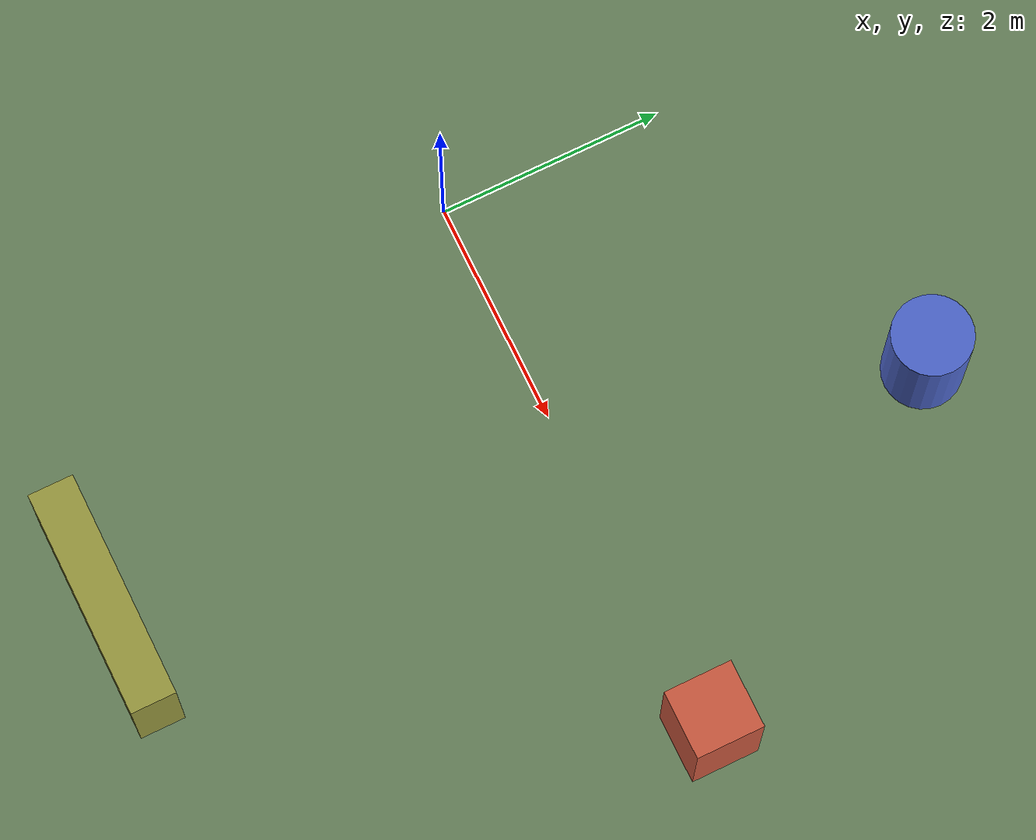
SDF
<?xml version="1.0" ?>
<sdf version="1.9">
  <world name="patrol_yard">

    <physics name="1ms" type="ignored">
      <max_step_size>0.001</max_step_size>
      <real_time_factor>1.0</real_time_factor>
    </physics>

    <plugin filename="gz-sim-physics-system"
            name="gz::sim::systems::Physics"/>
    <plugin filename="gz-sim-user-commands-system"
            name="gz::sim::systems::UserCommands"/>
    <plugin filename="gz-sim-scene-broadcaster-system"
            name="gz::sim::systems::SceneBroadcaster"/>
    <!-- Renders the gpu_lidar; needs a GL 3.3 context (llvmpipe is enough). -->
    <plugin filename="gz-sim-sensors-system"
            name="gz::sim::systems::Sensors">
      <render_engine>ogre2</render_engine>
    </plugin>
    <plugin filename="gz-sim-imu-system"
            name="gz::sim::systems::Imu"/>
    <plugin filename="gz-sim-navsat-system"
            name="gz::sim::systems::NavSat"/>

    <!-- Datum for the simulated GNSS. -->
    <spherical_coordinates>
      <surface_model>EARTH_WGS84</surface_model>
      <world_frame_orientation>ENU</world_frame_orientation>
      <latitude_deg>-41.286460</latitude_deg>
      <longitude_deg>174.776236</longitude_deg>
      <elevation>10.0</elevation>
    </spherical_coordinates>

    <scene>
      <ambient>0.6 0.6 0.6 1</ambient>
      <background>0.6 0.75 0.9 1</background>
      <grid>false</grid>
    </scene>

    <light type="directional" name="sun">
      <cast_shadows>true</cast_shadows>
      <pose>0 0 10 0 0 0</pose>
      <diffuse>0.9 0.9 0.9 1</diffuse>
      <specular>0.2 0.2 0.2 1</specular>
      <direction>-0.5 0.2 -0.9</direction>
    </light>

    <model name="ground_plane">
      <static>true</static>
      <link name="link">
        <collision name="collision">
          <geometry>
            <plane>
              <normal>0 0 1</normal>
              <size>200 200</size>
            </plane>
          </geometry>
          <surface>
            <friction>
              <ode>
                <mu>1.0</mu>
                <mu2>1.0</mu2>
              </ode>
            </friction>
          </surface>
        </collision>
        <visual name="visual">
          <geometry>
            <plane>
              <normal>0 0 1</normal>
              <size>200 200</size>
            </plane>
          </geometry>
          <material>
            <ambient>0.35 0.4 0.3 1</ambient>
            <diffuse>0.4 0.5 0.35 1</diffuse>
          </material>
        </visual>
      </link>
    </model>

    <!-- Static obstacles: something for /scan and the forward brake to see. -->
    <model name="obstacle_front">
      <static>true</static>
      <pose>5 0 0.5 0 0 0</pose>
      <link name="link">
        <collision name="collision">
          <geometry><box><size>0.6 0.6 1.0</size></box></geometry>
        </collision>
        <visual name="visual">
          <geometry><box><size>0.6 0.6 1.0</size></box></geometry>
          <material>
            <ambient>0.7 0.3 0.2 1</ambient>
            <diffuse>0.8 0.35 0.25 1</diffuse>
          </material>
        </visual>
      </link>
    </model>

    <model name="obstacle_left">
      <static>true</static>
      <pose>3 3 0.5 0 0 0</pose>
      <link name="link">
        <collision name="collision">
          <geometry><cylinder><radius>0.35</radius><length>1.0</length></cylinder></geometry>
        </collision>
        <visual name="visual">
          <geometry><cylinder><radius>0.35</radius><length>1.0</length></cylinder></geometry>
          <material>
            <ambient>0.25 0.35 0.7 1</ambient>
            <diffuse>0.3 0.4 0.8 1</diffuse>
          </material>
        </visual>
      </link>
    </model>

    <model name="obstacle_right">
      <static>true</static>
      <pose>2 -4 0.5 0 0 0</pose>
      <link name="link">
        <collision name="collision">
          <geometry><box><size>2.0 0.4 1.0</size></box></geometry>
        </collision>
        <visual name="visual">
          <geometry><box><size>2.0 0.4 1.0</size></box></geometry>
          <material>
            <ambient>0.5 0.5 0.2 1</ambient>
            <diffuse>0.6 0.6 0.25 1</diffuse>
          </material>
        </visual>
      </link>
    </model>

  </world>
</sdf>
